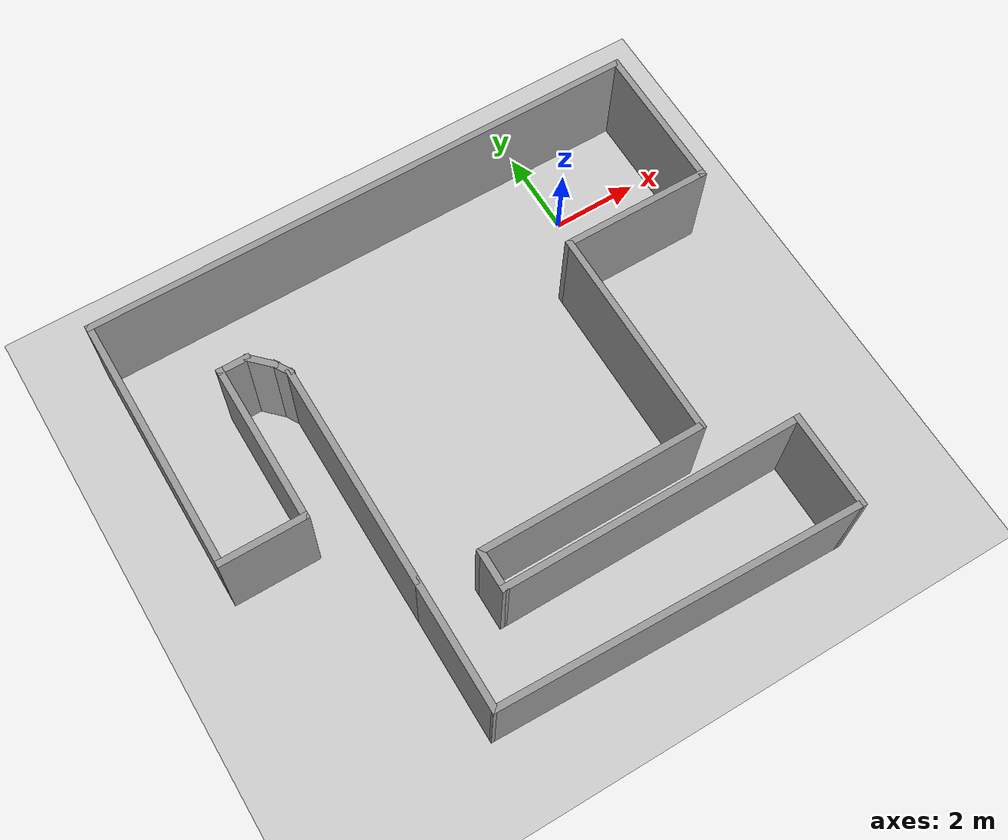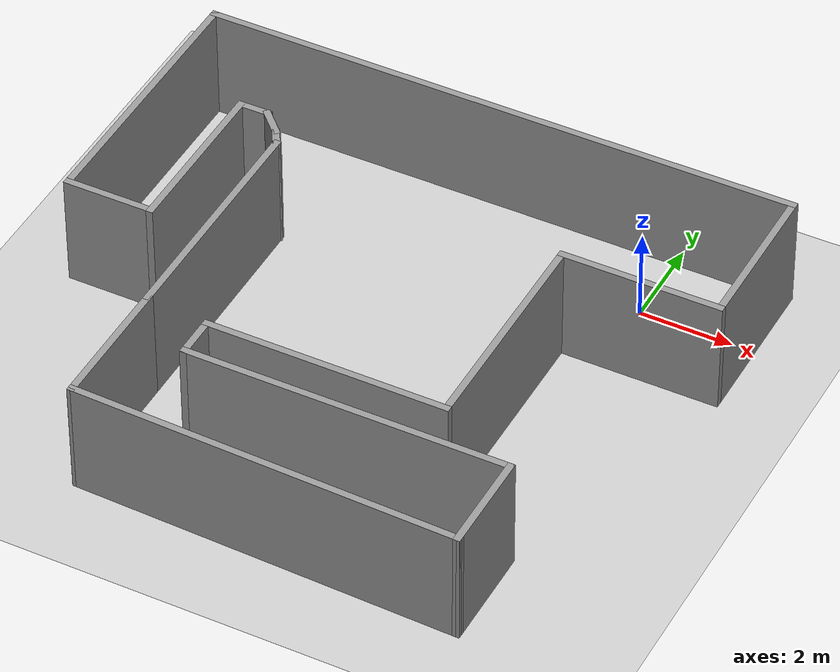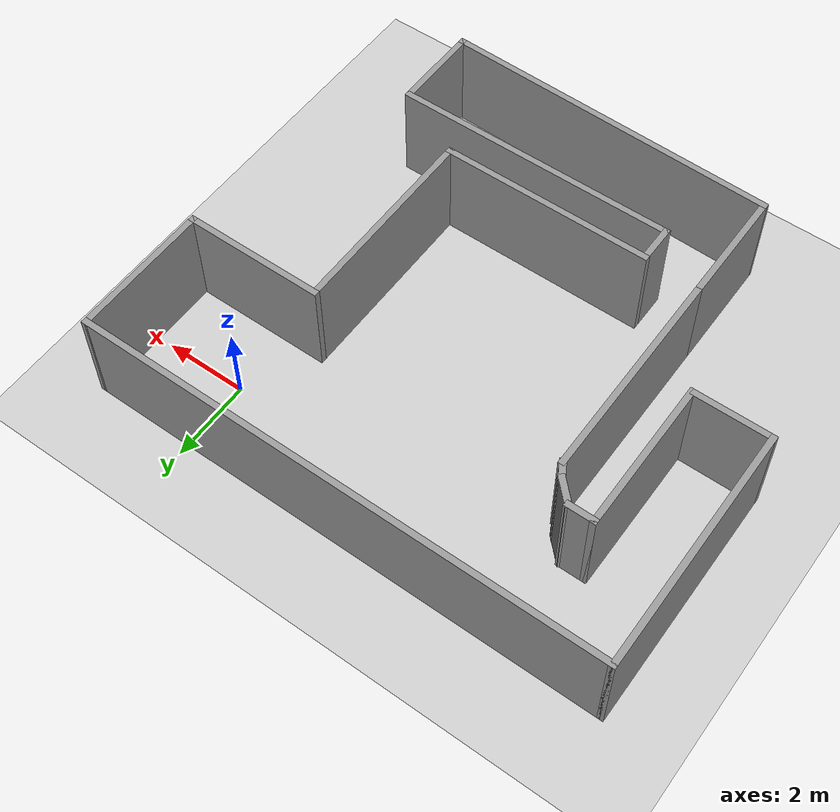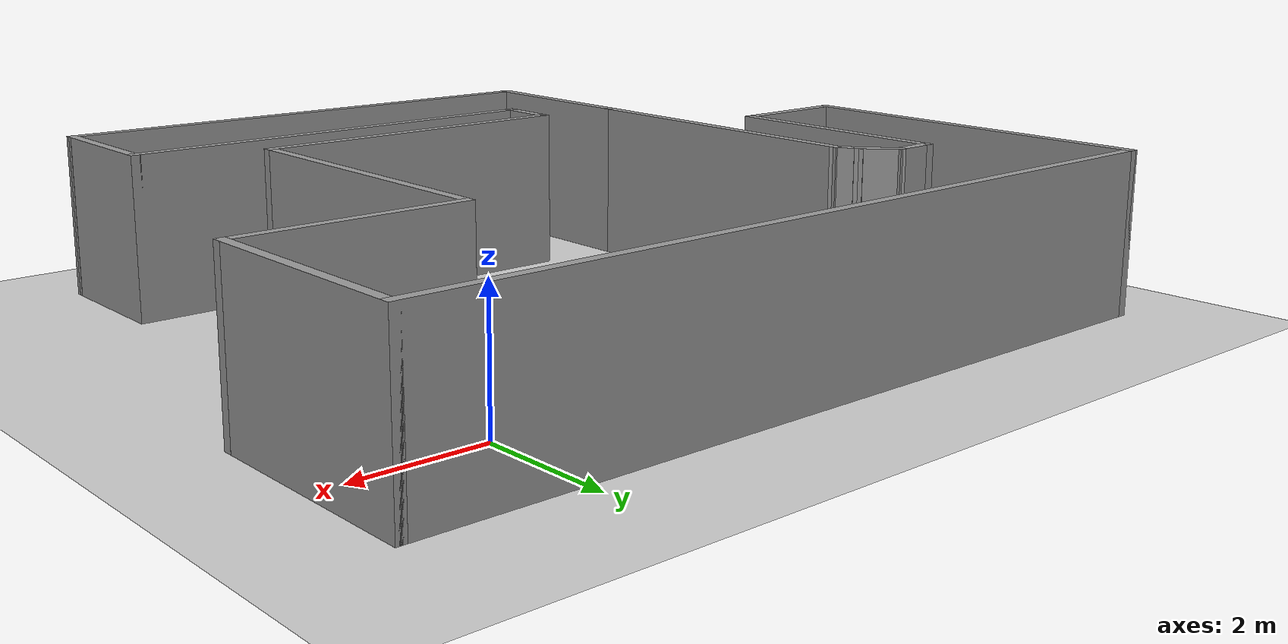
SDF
<?xml version="1.0" ?>
<sdf version='1.8'>
  <world name='moma_world_empty_world'>
    <physics name='1ms' type='ignored'>
      <max_step_size>0.004</max_step_size>
      <real_time_factor>1</real_time_factor>
      <real_time_update_rate>250</real_time_update_rate>
    </physics>
    <plugin name='gz::sim::systems::Physics' filename='gz-sim-physics-system'/>
    <plugin name='gz::sim::systems::UserCommands' filename='gz-sim-user-commands-system'/>
    <plugin name='gz::sim::systems::SceneBroadcaster' filename='gz-sim-scene-broadcaster-system'/>
    <plugin name='gz::sim::systems::Contact' filename='gz-sim-contact-system'/>
    <plugin name='gz::sim::systems::Sensors' filename='gz-sim-sensors-system'>
      <render_engine>ogre2</render_engine>
    </plugin>

    <plugin
      filename="gz-sim-imu-system"
      name="gz::sim::systems::Imu">
    </plugin>

    <gravity>0 0 -9.8</gravity>
    <magnetic_field>6e-06 2.3e-05 -4.2e-05</magnetic_field>
    <atmosphere type='adiabatic'/>
    <scene>
      <ambient>0.4 0.4 0.4 1</ambient>
      <background>0.7 0.7 0.7 1</background>
      <shadows>true</shadows>
    </scene>
    <model name='ground_plane'>
      <static>true</static>
      <link name='link'>
        <collision name='collision'>
          <geometry>
            <plane>
              <normal>0 0 1</normal>
              <size>100 100</size>
            </plane>
          </geometry>
          <surface>
            <friction>
              <ode/>
            </friction>
            <bounce/>
            <contact/>
          </surface>
        </collision>
        <visual name='visual'>
          <geometry>
            <plane>
              <normal>0 0 1</normal>
              <size>100 100</size>
            </plane>
          </geometry>
          <material>
            <ambient>0.8 0.8 0.8 1</ambient>
            <diffuse>0.8 0.8 0.8 1</diffuse>
            <specular>0.8 0.8 0.8 1</specular>
          </material>
        </visual>
        <pose>0 0 0 0 -0 0</pose>
        <inertial>
          <pose>0 0 0 0 -0 0</pose>
          <mass>1</mass>
          <inertia>
            <ixx>1</ixx>
            <ixy>0</ixy>
            <ixz>0</ixz>
            <iyy>1</iyy>
            <iyz>0</iyz>
            <izz>1</izz>
          </inertia>
        </inertial>
        <enable_wind>false</enable_wind>
      </link>
      <pose>0 0 0 0 -0 0</pose>
      <self_collide>false</self_collide>
    </model>

    <include>
      <uri>model://room_map_demo</uri>
      <name>room_map_demo</name>
      <pose>-4.00287 -3.41457 0 0 -0 0</pose>
    </include>
    <light name='sun' type='directional'>
      <pose>0 0 10 0 -0 0</pose>
      <cast_shadows>true</cast_shadows>
      <intensity>1</intensity>
      <direction>-0.5 0.1 -0.9</direction>
      <diffuse>0.8 0.8 0.8 1</diffuse>
      <specular>0.2 0.2 0.2 1</specular>
      <attenuation>
        <range>1000</range>
        <linear>0.01</linear>
        <constant>0.90000000000000002</constant>
        <quadratic>0.001</quadratic>
      </attenuation>
      <spot>
        <inner_angle>0</inner_angle>
        <outer_angle>0</outer_angle>
        <falloff>0</falloff>
      </spot>
    </light>

    <gui fullscreen='false'>
      <camera name="user_camera">
        <pose>5 5 5 0 0.5 0.785</pose>
        <view_angle>1.0472</view_angle>
      </camera>
    </gui>
  </world>
</sdf>

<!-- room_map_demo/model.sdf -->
<sdf version='1.7'>
  <model name='room_map_demo'>
    <pose>4.29297 -6.13753 0 0 -0 0</pose>
    <link name='Wall_1'>
      <collision name='Wall_1_Collision'>
        <geometry>
          <box>
            <size>6 0.15 2.5</size>
          </box>
        </geometry>
        <pose>0 0 1.25 0 -0 0</pose>
      </collision>
      <visual name='Wall_1_Visual'>
        <pose>0 0 1.25 0 -0 0</pose>
        <geometry>
          <box>
            <size>6 0.15 2.5</size>
          </box>
        </geometry>
        <material>
          <script>
            <uri>file://media/materials/scripts/gazebo.material</uri>
            <name>Gazebo/Grey</name>
          </script>
          <ambient>1 1 1 1</ambient>
        </material>
        <meta>
          <layer>0</layer>
        </meta>
      </visual>
      <pose>-6.425 2.16448 0 0 -0 1.5708</pose>
    </link>
    <link name='Wall_10'>
      <collision name='Wall_10_Collision'>
        <geometry>
          <box>
            <size>0.75 0.15 2.5</size>
          </box>
        </geometry>
        <pose>0 0 1.25 0 -0 0</pose>
      </collision>
      <visual name='Wall_10_Visual'>
        <pose>0 0 1.25 0 -0 0</pose>
        <geometry>
          <box>
            <size>0.75 0.15 2.5</size>
          </box>
        </geometry>
        <material>
          <script>
            <uri>file://media/materials/scripts/gazebo.material</uri>
            <name>Gazebo/Grey</name>
          </script>
          <ambient>1 1 1 1</ambient>
        </material>
        <meta>
          <layer>0</layer>
        </meta>
      </visual>
      <pose>-3.76287 2.62735 0 0 -0 -0.785398</pose>
    </link>
    <link name='Wall_11'>
      <collision name='Wall_11_Collision'>
        <geometry>
          <box>
            <size>0.5 0.15 2.5</size>
          </box>
        </geometry>
        <pose>0 0 1.25 0 -0 0</pose>
      </collision>
      <visual name='Wall_11_Visual'>
        <pose>0 0 1.25 0 -0 0</pose>
        <geometry>
          <box>
            <size>0.5 0.15 2.5</size>
          </box>
        </geometry>
        <material>
          <script>
            <uri>file://media/materials/scripts/gazebo.material</uri>
            <name>Gazebo/Grey</name>
          </script>
          <ambient>1 1 1 1</ambient>
        </material>
        <meta>
          <layer>0</layer>
        </meta>
      </visual>
      <pose>-3.46324 2.26366 0 0 -0 -1.0472</pose>
    </link>
    <link name='Wall_12'>
      <collision name='Wall_12_Collision'>
        <geometry>
          <box>
            <size>5.25 0.15 2.5</size>
          </box>
        </geometry>
        <pose>0 0 1.25 0 -0 0</pose>
      </collision>
      <visual name='Wall_12_Visual'>
        <pose>0 0 1.25 0 -0 0</pose>
        <geometry>
          <box>
            <size>5.25 0.15 2.5</size>
          </box>
        </geometry>
        <material>
          <script>
            <uri>file://media/materials/scripts/gazebo.material</uri>
            <name>Gazebo/Grey</name>
          </script>
          <ambient>1 1 1 1</ambient>
        </material>
        <meta>
          <layer>0</layer>
        </meta>
      </visual>
      <pose>-3.37574 -0.437892 0 0 -0 -1.5708</pose>
    </link>
    <link name='Wall_14'>
      <collision name='Wall_14_Collision'>
        <geometry>
          <box>
            <size>5.25 0.15 2.5</size>
          </box>
        </geometry>
        <pose>0 0 1.25 0 -0 0</pose>
      </collision>
      <visual name='Wall_14_Visual'>
        <pose>0 0 1.25 0 -0 0</pose>
        <geometry>
          <box>
            <size>5.25 0.15 2.5</size>
          </box>
        </geometry>
        <material>
          <script>
            <uri>file://media/materials/scripts/gazebo.material</uri>
            <name>Gazebo/Grey</name>
          </script>
          <ambient>1 1 1 1</ambient>
        </material>
        <meta>
          <layer>0</layer>
        </meta>
      </visual>
      <pose>0.525 -3.11052 0 0 -0 3.14159</pose>
    </link>
    <link name='Wall_15'>
      <collision name='Wall_15_Collision'>
        <geometry>
          <box>
            <size>1 0.15 2.5</size>
          </box>
        </geometry>
        <pose>0 0 1.25 0 -0 0</pose>
      </collision>
      <visual name='Wall_15_Visual'>
        <pose>0 0 1.25 0 -0 0</pose>
        <geometry>
          <box>
            <size>1 0.15 2.5</size>
          </box>
        </geometry>
        <material>
          <script>
            <uri>file://media/materials/scripts/gazebo.material</uri>
            <name>Gazebo/Grey</name>
          </script>
          <ambient>1 1 1 1</ambient>
        </material>
        <meta>
          <layer>0</layer>
        </meta>
      </visual>
      <pose>-2.025 -3.53552 0 0 -0 -1.5708</pose>
    </link>
    <link name='Wall_17'>
      <collision name='Wall_17_Collision'>
        <geometry>
          <box>
            <size>3 0.15 2.5</size>
          </box>
        </geometry>
        <pose>0 0 1.25 0 -0 0</pose>
      </collision>
      <visual name='Wall_17_Visual'>
        <pose>0 0 1.25 0 -0 0</pose>
        <geometry>
          <box>
            <size>3 0.15 2.5</size>
          </box>
        </geometry>
        <material>
          <script>
            <uri>file://media/materials/scripts/gazebo.material</uri>
            <name>Gazebo/Grey</name>
          </script>
          <ambient>1 1 1 1</ambient>
        </material>
        <meta>
          <layer>0</layer>
        </meta>
      </visual>
      <pose>-3.37574 -4.41289 0 0 -0 -1.5708</pose>
    </link>
    <link name='Wall_19'>
      <collision name='Wall_19_Collision'>
        <geometry>
          <box>
            <size>7 0.15 2.5</size>
          </box>
        </geometry>
        <pose>0 0 1.25 0 -0 0</pose>
      </collision>
      <visual name='Wall_19_Visual'>
        <pose>0 0 1.25 0 -0 0</pose>
        <geometry>
          <box>
            <size>7 0.15 2.5</size>
          </box>
        </geometry>
        <material>
          <script>
            <uri>file://media/materials/scripts/gazebo.material</uri>
            <name>Gazebo/Grey</name>
          </script>
          <ambient>1 1 1 1</ambient>
        </material>
        <meta>
          <layer>0</layer>
        </meta>
      </visual>
      <pose>1.4 -3.96052 0 0 -0 0</pose>
    </link>
    <link name='Wall_2'>
      <collision name='Wall_2_Collision'>
        <geometry>
          <box>
            <size>13 0.15 2.5</size>
          </box>
        </geometry>
        <pose>0 0 1.25 0 -0 0</pose>
      </collision>
      <visual name='Wall_2_Visual'>
        <pose>0 0 1.25 0 -0 0</pose>
        <geometry>
          <box>
            <size>13 0.15 2.5</size>
          </box>
        </geometry>
        <material>
          <script>
            <uri>file://media/materials/scripts/gazebo.material</uri>
            <name>Gazebo/Grey</name>
          </script>
          <ambient>1 1 1 1</ambient>
        </material>
        <meta>
          <layer>0</layer>
        </meta>
      </visual>
      <pose>0 5.08948 0 0 -0 0</pose>
    </link>
    <link name='Wall_20'>
      <collision name='Wall_20_Collision'>
        <geometry>
          <box>
            <size>2.25 0.15 2.5</size>
          </box>
        </geometry>
        <pose>0 0 1.25 0 -0 0</pose>
      </collision>
      <visual name='Wall_20_Visual'>
        <pose>0 0 1.25 0 -0 0</pose>
        <geometry>
          <box>
            <size>2.25 0.15 2.5</size>
          </box>
        </geometry>
        <material>
          <script>
            <uri>file://media/materials/scripts/gazebo.material</uri>
            <name>Gazebo/Grey</name>
          </script>
          <ambient>1 1 1 1</ambient>
        </material>
        <meta>
          <layer>0</layer>
        </meta>
      </visual>
      <pose>4.825 -5.01052 0 0 -0 -1.5708</pose>
    </link>
    <link name='Wall_23'>
      <collision name='Wall_23_Collision'>
        <geometry>
          <box>
            <size>8.35376 0.15 2.5</size>
          </box>
        </geometry>
        <pose>0 0 1.25 0 -0 0</pose>
      </collision>
      <visual name='Wall_23_Visual'>
        <pose>0 0 1.25 0 -0 0</pose>
        <geometry>
          <box>
            <size>8.35376 0.15 2.5</size>
          </box>
        </geometry>
        <material>
          <script>
            <uri>file://media/materials/scripts/gazebo.material</uri>
            <name>Gazebo/Grey</name>
          </script>
          <ambient>1 1 1 1</ambient>
        </material>
        <meta>
          <layer>0</layer>
        </meta>
      </visual>
      <pose>0.724632 -5.94921 0 0 -0 -0.027141</pose>
    </link>
    <link name='Wall_3'>
      <collision name='Wall_3_Collision'>
        <geometry>
          <box>
            <size>3.5 0.15 2.5</size>
          </box>
        </geometry>
        <pose>0 0 1.25 0 -0 0</pose>
      </collision>
      <visual name='Wall_3_Visual'>
        <pose>0 0 1.25 0 -0 0</pose>
        <geometry>
          <box>
            <size>3.5 0.15 2.5</size>
          </box>
        </geometry>
        <material>
          <script>
            <uri>file://media/materials/scripts/gazebo.material</uri>
            <name>Gazebo/Grey</name>
          </script>
          <ambient>1 1 1 1</ambient>
        </material>
        <meta>
          <layer>0</layer>
        </meta>
      </visual>
      <pose>6.425 3.41448 0 0 -0 -1.5708</pose>
    </link>
    <link name='Wall_4'>
      <collision name='Wall_4_Collision'>
        <geometry>
          <box>
            <size>3.5 0.15 2.5</size>
          </box>
        </geometry>
        <pose>0 0 1.25 0 -0 0</pose>
      </collision>
      <visual name='Wall_4_Visual'>
        <pose>0 0 1.25 0 -0 0</pose>
        <geometry>
          <box>
            <size>3.5 0.15 2.5</size>
          </box>
        </geometry>
        <material>
          <script>
            <uri>file://media/materials/scripts/gazebo.material</uri>
            <name>Gazebo/Grey</name>
          </script>
          <ambient>1 1 1 1</ambient>
        </material>
        <meta>
          <layer>0</layer>
        </meta>
      </visual>
      <pose>4.75 1.73948 0 0 -0 3.14159</pose>
    </link>
    <link name='Wall_5'>
      <collision name='Wall_5_Collision'>
        <geometry>
          <box>
            <size>5 0.15 2.5</size>
          </box>
        </geometry>
        <pose>0 0 1.25 0 -0 0</pose>
      </collision>
      <visual name='Wall_5_Visual'>
        <pose>0 0 1.25 0 -0 0</pose>
        <geometry>
          <box>
            <size>5 0.15 2.5</size>
          </box>
        </geometry>
        <material>
          <script>
            <uri>file://media/materials/scripts/gazebo.material</uri>
            <name>Gazebo/Grey</name>
          </script>
          <ambient>1 1 1 1</ambient>
        </material>
        <meta>
          <layer>0</layer>
        </meta>
      </visual>
      <pose>3.075 -0.68552 0 0 -0 -1.5708</pose>
    </link>
    <link name='Wall_7'>
      <collision name='Wall_7_Collision'>
        <geometry>
          <box>
            <size>2 0.15 2.5</size>
          </box>
        </geometry>
        <pose>0 0 1.25 0 -0 0</pose>
      </collision>
      <visual name='Wall_7_Visual'>
        <pose>0 0 1.25 0 -0 0</pose>
        <geometry>
          <box>
            <size>2 0.15 2.5</size>
          </box>
        </geometry>
        <material>
          <script>
            <uri>file://media/materials/scripts/gazebo.material</uri>
            <name>Gazebo/Grey</name>
          </script>
          <ambient>1 1 1 1</ambient>
        </material>
        <meta>
          <layer>0</layer>
        </meta>
      </visual>
      <pose>-5.5 -0.76052 0 0 -0 0</pose>
    </link>
    <link name='Wall_8'>
      <collision name='Wall_8_Collision'>
        <geometry>
          <box>
            <size>3.75 0.15 2.5</size>
          </box>
        </geometry>
        <pose>0 0 1.25 0 -0 0</pose>
      </collision>
      <visual name='Wall_8_Visual'>
        <pose>0 0 1.25 0 -0 0</pose>
        <geometry>
          <box>
            <size>3.75 0.15 2.5</size>
          </box>
        </geometry>
        <material>
          <script>
            <uri>file://media/materials/scripts/gazebo.material</uri>
            <name>Gazebo/Grey</name>
          </script>
          <ambient>1 1 1 1</ambient>
        </material>
        <meta>
          <layer>0</layer>
        </meta>
      </visual>
      <pose>-4.575 1.03948 0 0 -0 1.5708</pose>
    </link>
    <link name='Wall_9'>
      <collision name='Wall_9_Collision'>
        <geometry>
          <box>
            <size>0.75 0.15 2.5</size>
          </box>
        </geometry>
        <pose>0 0 1.25 0 -0 0</pose>
      </collision>
      <visual name='Wall_9_Visual'>
        <pose>0 0 1.25 0 -0 0</pose>
        <geometry>
          <box>
            <size>0.75 0.15 2.5</size>
          </box>
        </geometry>
        <material>
          <script>
            <uri>file://media/materials/scripts/gazebo.material</uri>
            <name>Gazebo/Grey</name>
          </script>
          <ambient>1 1 1 1</ambient>
        </material>
        <meta>
          <layer>0</layer>
        </meta>
      </visual>
      <pose>-4.275 2.83948 0 0 -0 0</pose>
    </link>
    <static>1</static>
  </model>
</sdf>
